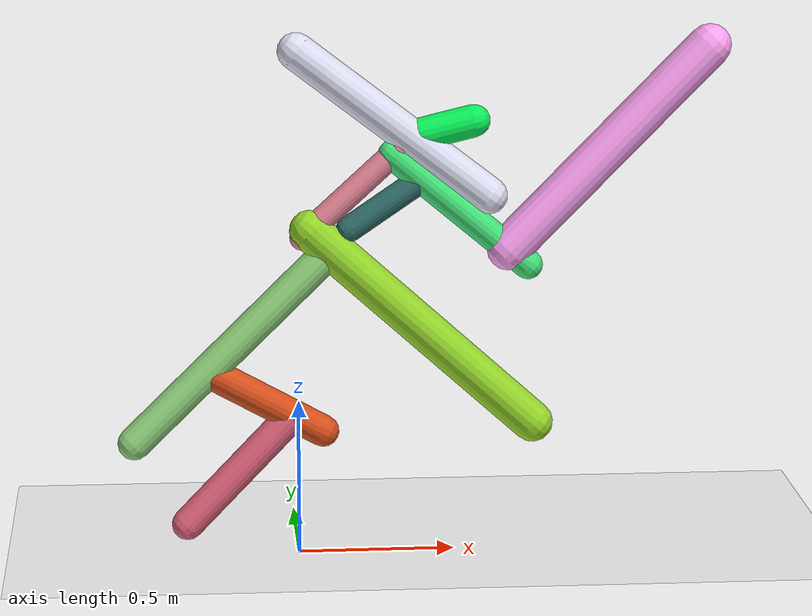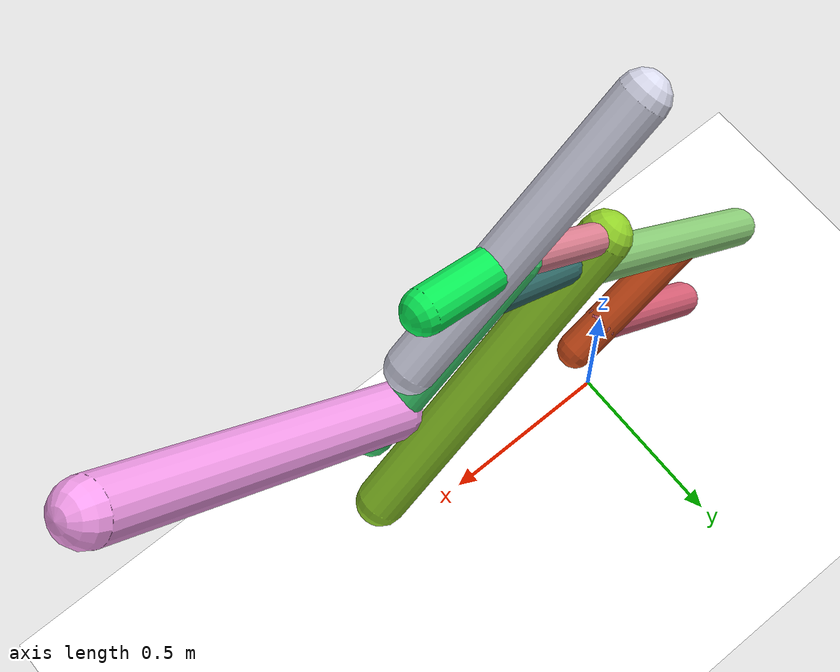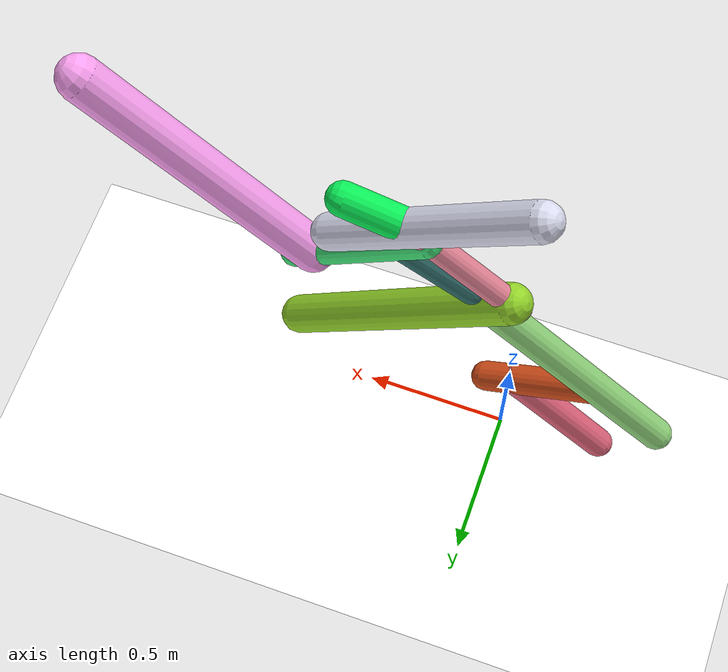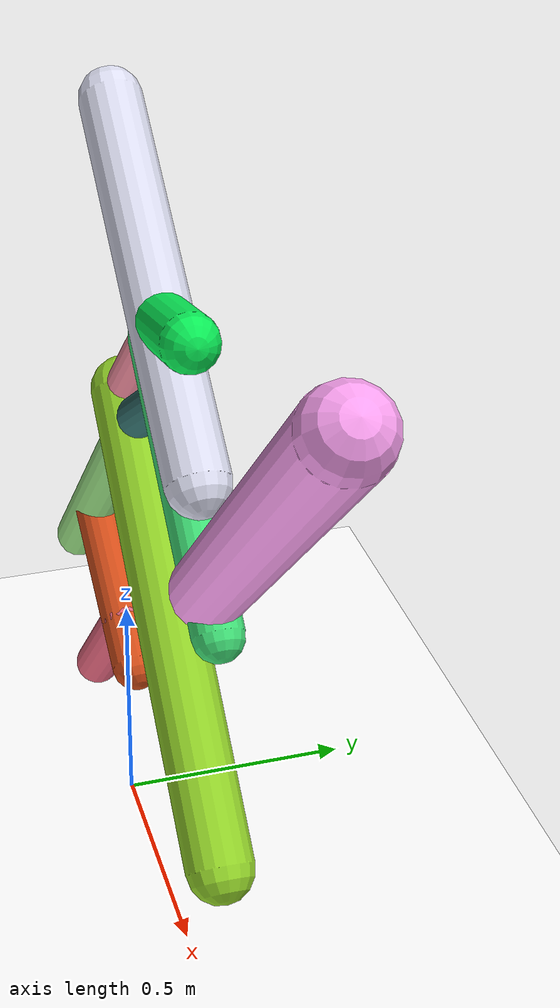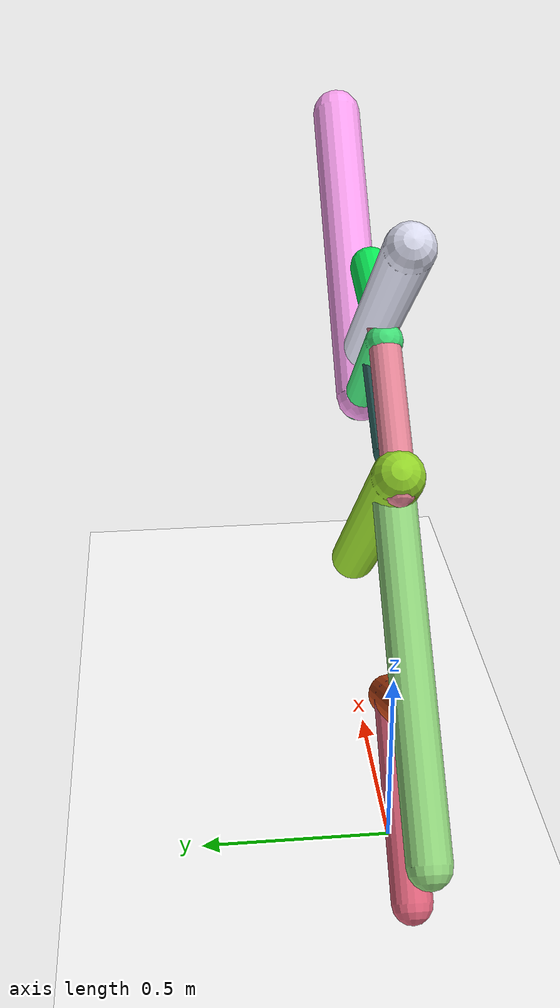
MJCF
<mujoco model="morphology">
  <option timestep="0.01"/>
  <default>
    <default class="/"/>
    <default class="0/"/>
    <default class="0/1/"/>
    <default class="0/1/2/"/>
    <default class="0/1/2/3/"/>
    <default class="0/1/2/3/4/"/>
    <default class="0/1/2/3/5/"/>
    <default class="0/1/2/6/"/>
    <default class="0/1/2/6/7/"/>
    <default class="0/1/2/6/7/8/"/>
    <default class="0/1/2/6/7/8/9/"/>
  </default>
  <asset>
    <texture name="texplane" type="2d" builtin="checker" rgb1="0.10000000000000001 0.20000000000000001 0.29999999999999999" rgb2="0.20000000000000001 0.29999999999999999 0.40000000000000002" width="300" height="300"/>
    <material name="MatPlane" class="/" texture="texplane" texrepeat="20 20" specular="1" shininess="1" reflectance="0.5"/>
  </asset>
  <worldbody>
    <light name="//unnamed_light_0" class="/" directional="true" pos="0 0 1.5" dir="0 0 -1.3" cutoff="100" exponent="1" diffuse="1 1 1" specular="0.10000000000000001 0.10000000000000001 0.10000000000000001"/>
    <geom name="ground" class="/" type="plane" size="15 15 0.5" material="MatPlane" rgba="1 1 1 1"/>
    <site name="body" class="/" size="9.9999999999999995e-07 9.9999999999999995e-07 9.9999999999999995e-07" pos="0 0 1.6345885753631593"/>
    <body pos="0 0 1.6345885753631593" name="0/">
      <joint name="0/rootx/" class="/" type="slide" axis="1 0 0" limited="false" stiffness="0" armature="0" damping="0"/>
      <joint name="0/rootz/" class="/" type="slide" axis="0 0 1" limited="false" stiffness="0" armature="0" damping="0"/>
      <joint name="0/rooty/" class="/" type="hinge" axis="0 1 0" limited="false" stiffness="0" armature="0" damping="0"/>
      <geom name="0/geom" class="0/" type="capsule" contype="1" conaffinity="1" condim="3" size="0.059924488047918174" rgba="0.86707913329060504 0.87276821565400875 0.94822012341150697 1" friction="0.59999999999999998 0.10000000000000001 0.10000000000000001" fromto="0 0 0 0.61190556653860684 0 -0.46959471010903814"/>
      <site name="0/end0" class="0/" size="0.0050000000000000001" pos="0.61190556653860684 0 -0.46959471010903814"/>
      <site name="0/attach1" class="0/" size="9.9999999999999995e-07 9.9999999999999995e-07 9.9999999999999995e-07" pos="0.36064827225361551 0 -0.27677231605896291"/>
      <body pos="0.36064827225361551 0 -0.27677231605896291" name="0/1/">
        <geom name="0/1/geom" class="0/1/" type="capsule" contype="1" conaffinity="1" condim="3" size="0.05292881606922447" rgba="0.036856171941606508 0.93653518615172748 0.34229789057669346 1" friction="0.59999999999999998 0.10000000000000001 0.10000000000000001" fromto="0 0 0 0.20203047111285111 0 0.04872671106609161"/>
        <site name="0/1/end1" class="0/1/" size="0.0050000000000000001" pos="0.20203047111285111 0 0.04872671106609161"/>
        <site name="0/1/attach2" class="0/1/" size="9.9999999999999995e-07 9.9999999999999995e-07 9.9999999999999995e-07" pos="0.0089455300117945377 0 0.0021575272968317942"/>
        <body pos="0.0089455300117945377 0 0.0021575272968317942" name="0/1/2/">
          <joint name="0/1/2/joint/" class="0/1/" type="hinge" axis="0 1 0" limited="true" range="-30.353872949412469 30.353872949412469"/>
          <geom name="0/1/2/geom" class="0/1/2/" type="capsule" contype="1" conaffinity="1" condim="3" size="0.040606039674471801" rgba="0.89676267848546398 0.51972916585731843 0.58912467873842445 1" friction="0.59999999999999998 0.10000000000000001 0.10000000000000001" fromto="0 0 0 -0.35418253596994304 0 -0.32328082939757635"/>
          <site name="0/1/2/end2" class="0/1/2/" size="0.0050000000000000001" pos="-0.35418253596994304 0 -0.32328082939757635"/>
          <site name="0/1/2/attach3" class="0/1/2/" size="9.9999999999999995e-07 9.9999999999999995e-07 9.9999999999999995e-07" pos="-0.064719159050320121 0 -0.059072543931066916"/>
          <body pos="-0.064719159050320121 0 -0.059072543931066916" name="0/1/2/3/">
            <joint name="0/1/2/3/joint/" class="0/1/2/" type="hinge" axis="0 1 0" limited="true" range="-41.033374410977949 41.033374410977949"/>
            <geom name="0/1/2/3/geom" class="0/1/2/3/" type="capsule" contype="1" conaffinity="1" condim="3" size="0.047557206083454644" rgba="0.25533238369412792 0.88154410416392803 0.47002289701228572 1" friction="0.59999999999999998 0.10000000000000001 0.10000000000000001" fromto="0 0 0 0.43355050835920572 0 -0.36239251138443573"/>
            <site name="0/1/2/3/end3" class="0/1/2/3/" size="0.0050000000000000001" pos="0.43355050835920572 0 -0.36239251138443573"/>
            <site name="0/1/2/3/attach4" class="0/1/2/3/" size="9.9999999999999995e-07 9.9999999999999995e-07 9.9999999999999995e-07" pos="0.37033569993437487 0 -0.30955305498878044"/>
            <body pos="0.37033569993437487 0 -0.30955305498878044" name="0/1/2/3/4/">
              <joint name="0/1/2/3/4/joint/" class="0/1/2/3/" type="hinge" axis="0 1 0" limited="true" range="-33.139959686386405 33.139959686386405"/>
              <geom name="0/1/2/3/4/geom" class="0/1/2/3/4/" type="capsule" contype="1" conaffinity="1" condim="3" size="0.069682125521528179" rgba="0.99229853714256722 0.63430953474598295 0.95068470523752457 1" friction="0.59999999999999998 0.10000000000000001 0.10000000000000001" fromto="0 0 0 0.63822285844697357 0 0.64845610197493464"/>
              <site name="0/1/2/3/4/end4" class="0/1/2/3/4/" size="0.0050000000000000001" pos="0.63822285844697357 0 0.64845610197493464"/>
            </body>
            <site name="0/1/2/3/attach5" class="0/1/2/3/" size="9.9999999999999995e-07 9.9999999999999995e-07 9.9999999999999995e-07" pos="0.094612340810320827 0 -0.079083758715847163"/>
            <body pos="0.094612340810320827 0 -0.079083758715847163" name="0/1/2/3/5/">
              <joint name="0/1/2/3/5/joint/" class="0/1/2/3/" type="hinge" axis="0 1 0" limited="true" range="-54.099200013519052 54.099200013519052"/>
              <geom name="0/1/2/3/5/geom" class="0/1/2/3/5/" type="capsule" contype="1" conaffinity="1" condim="3" size="0.042450023143106717" rgba="0.19153476805806369 0.42724486383349514 0.41677782554850729 1" friction="0.59999999999999998 0.10000000000000001 0.10000000000000001" fromto="0 0 0 -0.23426347186337138 0 -0.15964485670606043"/>
              <site name="0/1/2/3/5/end5" class="0/1/2/3/5/" size="0.0050000000000000001" pos="-0.23426347186337138 0 -0.15964485670606043"/>
            </body>
          </body>
          <site name="0/1/2/attach6" class="0/1/2/" size="9.9999999999999995e-07 9.9999999999999995e-07 9.9999999999999995e-07" pos="-0.32925896934016541 0 -0.30053179331211549"/>
          <body pos="-0.32925896934016541 0 -0.30053179331211549" name="0/1/2/6/">
            <joint name="0/1/2/6/joint/" class="0/1/2/" type="hinge" axis="0 1 0" limited="true" range="-38.095458232591923 38.095458232591923"/>
            <geom name="0/1/2/6/geom" class="0/1/2/6/" type="capsule" contype="1" conaffinity="1" condim="3" size="0.066400804074061501" rgba="0.58207735861420884 0.834990974320864 0.16314107892769925 1" friction="0.59999999999999998 0.10000000000000001 0.10000000000000001" fromto="0 0 0 0.7150024528684582 0 -0.63957767773678209"/>
            <site name="0/1/2/6/end6" class="0/1/2/6/" size="0.0050000000000000001" pos="0.7150024528684582 0 -0.63957767773678209"/>
            <site name="0/1/2/6/attach7" class="0/1/2/6/" size="9.9999999999999995e-07 9.9999999999999995e-07 9.9999999999999995e-07" pos="0.069723256155250338 0 -0.062368231153782962"/>
            <body pos="0.069723256155250338 0 -0.062368231153782962" name="0/1/2/6/7/">
              <joint name="0/1/2/6/7/joint/" class="0/1/2/6/" type="hinge" axis="0 1 0" limited="true" range="-67.544749507632332 67.544749507632332"/>
              <geom name="0/1/2/6/7/geom" class="0/1/2/6/7/" type="capsule" contype="1" conaffinity="1" condim="3" size="0.054398681775781541" rgba="0.56628287009832845 0.8326210329292455 0.48496201986130139 1" friction="0.59999999999999998 0.10000000000000001 0.10000000000000001" fromto="0 0 0 -0.63758333935606037 0 -0.62483230683200308"/>
              <site name="0/1/2/6/7/end7" class="0/1/2/6/7/" size="0.0050000000000000001" pos="-0.63758333935606037 0 -0.62483230683200308"/>
              <site name="0/1/2/6/7/attach8" class="0/1/2/6/7/" size="9.9999999999999995e-07 9.9999999999999995e-07 9.9999999999999995e-07" pos="-0.40020587478624498 0 -0.39220215541228498"/>
              <body pos="-0.40020587478624498 0 -0.39220215541228498" name="0/1/2/6/7/8/">
                <geom name="0/1/2/6/7/8/geom" class="0/1/2/6/7/8/" type="capsule" contype="1" conaffinity="1" condim="3" size="0.051574875267769923" rgba="0.83815290690328159 0.30813946130240699 0.10366042747904303 1" friction="0.59999999999999998 0.10000000000000001 0.10000000000000001" fromto="0 0 0 0.36882826640219291 0 -0.20318294491693067"/>
                <site name="0/1/2/6/7/8/end8" class="0/1/2/6/7/8/" size="0.0050000000000000001" pos="0.36882826640219291 0 -0.20318294491693067"/>
                <site name="0/1/2/6/7/8/attach9" class="0/1/2/6/7/8/" size="9.9999999999999995e-07 9.9999999999999995e-07 9.9999999999999995e-07" pos="0.27113694582404768 0 -0.14936600078324355"/>
                <body pos="0.27113694582404768 0 -0.14936600078324355" name="0/1/2/6/7/8/9/">
                  <joint name="0/1/2/6/7/8/9/joint/" class="0/1/2/6/7/8/" type="hinge" axis="0 1 0" limited="true" range="-62.228481519749572 62.228481519749572"/>
                  <geom name="0/1/2/6/7/8/9/geom" class="0/1/2/6/7/8/9/" type="capsule" contype="1" conaffinity="1" condim="3" size="0.051976135426907141" rgba="0.87831908444637208 0.38966732279035621 0.48392286043041866 1" friction="0.59999999999999998 0.10000000000000001 0.10000000000000001" fromto="0 0 0 -0.34114301009980141 0 -0.35550558496605611"/>
                  <site name="0/1/2/6/7/8/9/end9" class="0/1/2/6/7/8/9/" size="0.0050000000000000001" pos="-0.34114301009980141 0 -0.35550558496605611"/>
                </body>
              </body>
            </body>
          </body>
        </body>
      </body>
      <camera name="0/side" class="0/" mode="trackcom" pos="0.40000000000000002 -4 0.20000000000000001" quat="0.70699999999999996 0.70699999999999996 0 0"/>
    </body>
  </worldbody>
  <actuator>
    <motor name="0/1/2/motor" class="0/1/2/" ctrllimited="true" ctrlrange="-1 1" gear="51" joint="0/1/2/joint/"/>
    <motor name="0/1/2/3/motor" class="0/1/2/3/" ctrllimited="true" ctrlrange="-1 1" gear="65" joint="0/1/2/3/joint/"/>
    <motor name="0/1/2/3/4/motor" class="0/1/2/3/4/" ctrllimited="true" ctrlrange="-1 1" gear="69" joint="0/1/2/3/4/joint/"/>
    <motor name="0/1/2/3/5/motor" class="0/1/2/3/5/" ctrllimited="true" ctrlrange="-1 1" gear="69" joint="0/1/2/3/5/joint/"/>
    <motor name="0/1/2/6/motor" class="0/1/2/6/" ctrllimited="true" ctrlrange="-1 1" gear="64" joint="0/1/2/6/joint/"/>
    <motor name="0/1/2/6/7/motor" class="0/1/2/6/7/" ctrllimited="true" ctrlrange="-1 1" gear="50" joint="0/1/2/6/7/joint/"/>
    <motor name="0/1/2/6/7/8/9/motor" class="0/1/2/6/7/8/9/" ctrllimited="true" ctrlrange="-1 1" gear="67" joint="0/1/2/6/7/8/9/joint/"/>
  </actuator>
  <sensor>
    <subtreelinvel name="velocity" body="0/"/>
  </sensor>
</mujoco>
